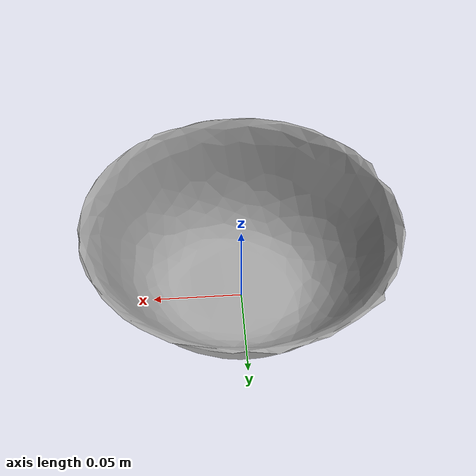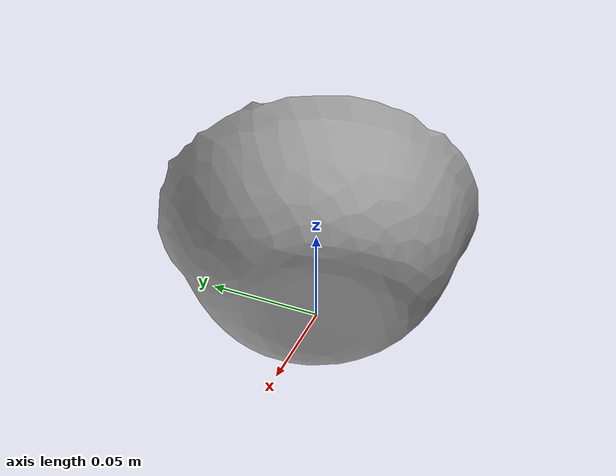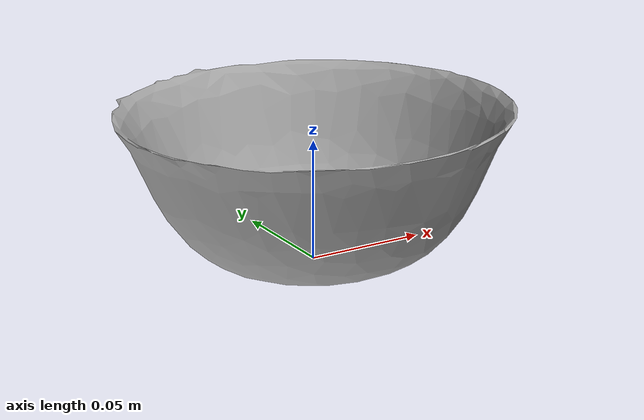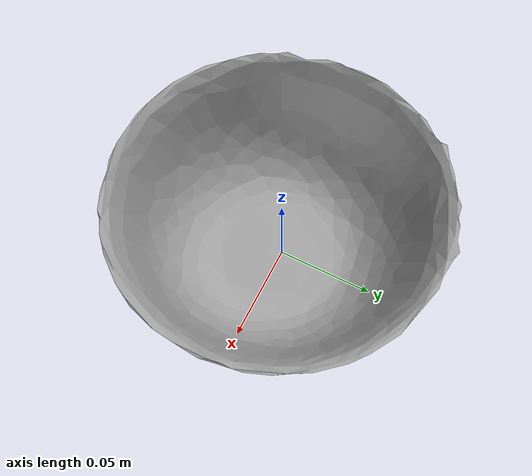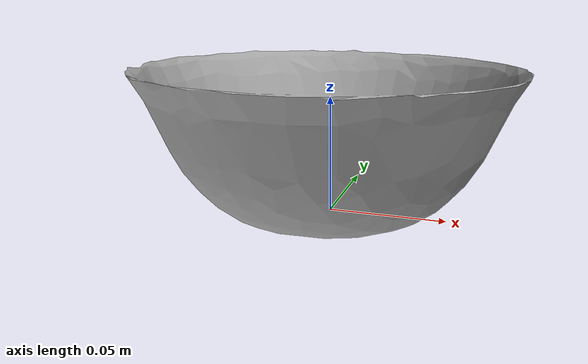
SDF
<?xml version="1.0" ?>
<sdf version="1.5">
  <model name="small_bowl">
    <link name="small_bowl">
      <inertial>
        <mass>0.390</mass>
        <inertia>
          <ixx>0.00058</ixx>
          <ixy>0</ixy>
          <ixz>0</ixz>
          <iyy>0.00058</iyy>
          <iyz>0</iyz>
          <izz>0.00019</izz>
        </inertia>
      </inertial>
      <collision name="small_bowl_collision">
        <geometry>
          <mesh>
            <uri>model://small_bowl/meshes/small_bowl.dae</uri>
          </mesh>
        </geometry>
        <surface>
          <friction>
            <ode>
              <mu>1.0</mu>
              <mu2>1.0</mu2>
            </ode>
          </friction>
          <contact>
            <ode>
              <kp>10000000.0</kp>
              <kd>1.0</kd>
              <min_depth>0.001</min_depth>
              <max_vel>0.1</max_vel>
            </ode>
          </contact>
        </surface>
      </collision>
      <visual name="small_bowl_visual">
        <geometry>
          <mesh>
            <uri>model://small_bowl/meshes/small_bowl.dae</uri>
          </mesh>
        </geometry>
      </visual>
    </link>
  </model>
</sdf>
